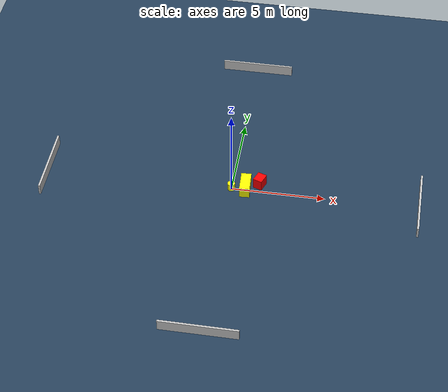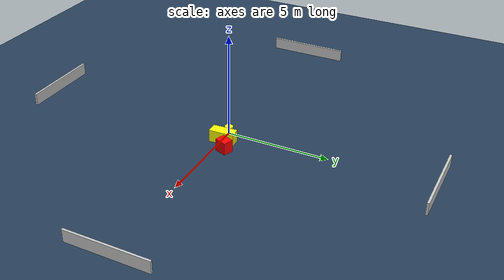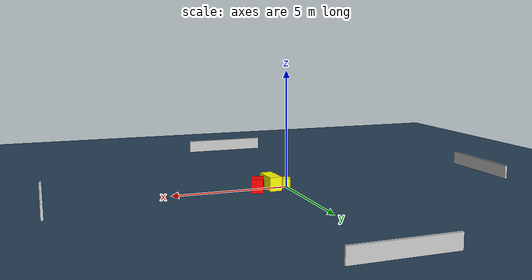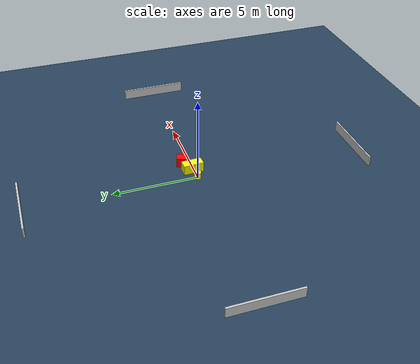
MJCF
<?xml version="1.0" ?>
<mujoco model="generated_environment">
  <option timestep="0.01" integrator="RK4" cone="elliptic"/>
  <default>
    <geom density="1"/>
  </default>
  <asset>
    <texture builtin="gradient" height="3072" name="skybox" rgb1="0.3 0.5 0.7" rgb2="0 0 0" type="skybox" width="512"/>
    <texture builtin="checker" height="300" name="groundplane" rgb1="0.2 0.3 0.4" rgb2="0.1 0.2 0.3" type="2d" width="300"/>
    <material name="groundplane" reflectance="0.2" texrepeat="5 5" texture="groundplane"/>
  </asset>
  <worldbody>
    <light dir="0 0 -1" directional="true" pos="0 0 1.5"/>
    <geom condim="3" friction="0.5 0.005 0.001" material="groundplane" name="floor" pos="0 0 0" size="0 0 0.05" type="plane"/>
    <body name="walls">
      <geom name="wall_1" condim="4" pos="-10.0 0.0 0.3" rgba="0.800000011920929 0.800000011920929 0.800000011920929 1.0" size="0.05 2.0 0.3" type="box"/>
      <geom name="wall_2" condim="4" pos="10.0 0.0 0.3" rgba="0.800000011920929 0.800000011920929 0.800000011920929 1.0" size="0.05 2.0 0.3" type="box"/>
      <geom name="wall_3" condim="4" pos="0.0 -10.0 0.3" rgba="0.800000011920929 0.800000011920929 0.800000011920929 1.0" size="2.0 0.05 0.3" type="box"/>
      <geom name="wall_4" condim="4" pos="0.0 10.0 0.3" rgba="0.800000011920929 0.800000011920929 0.800000011920929 1.0" size="2.0 0.05 0.3" type="box"/>
    </body>
    <body name="robot">
      <joint name="joint_x" type="slide" pos="0 0 0" axis="1 0 0"/>
      <joint name="joint_y" type="slide" pos="0 0 0" axis="0 1 0"/>
      <geom name="robot" type="cylinder" pos="0.0 0.0 0.2" size="0.2 0.2 0.0" mass="5.0" friction="1.0 0.005 0.0001" condim="4" rgba="1.0 1.0 0.0 1.0"/>
    </body>
    <body name="obstacle_1_movable">
      <geom name="obstacle_1_movable" condim="4" pos="0.7445304014394297 0.07833476725965935 0.3" euler="0 0 3.0720453865442243" friction="0.0 0.005 0.001" rgba="1.0 1.0 0.0 1.0" size="0.2736663325670272 0.6003391724140998 0.3" type="box" mass="0.1"/>
      <joint type="free"/>
    </body>
    <body name="obstacle_2_static">
      <geom name="obstacle_2_static" condim="4" pos="1.469351053639846 0.4976717858908078 0.3" euler="0 0 339.2402317050638" friction="0.0 0.005 0.001" rgba="1.0 0.0 0.0 1.0" size="0.25092307545717507 0.3062192801757371 0.3" type="box"/>
    </body>
  </worldbody>
  <actuator>
    <motor name="actuator_x" joint="joint_x" gear="1" ctrlrange="-1 1"/>
    <motor name="actuator_y" joint="joint_y" gear="1" ctrlrange="-1 1"/>
  </actuator>
</mujoco>
